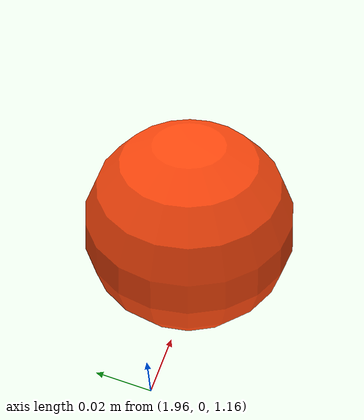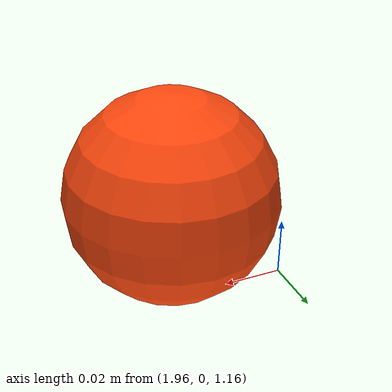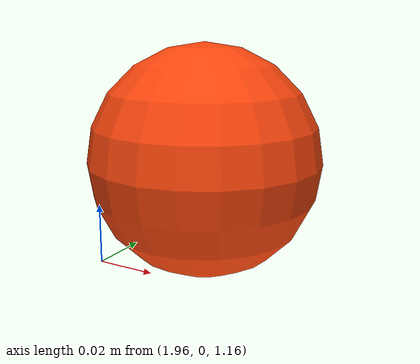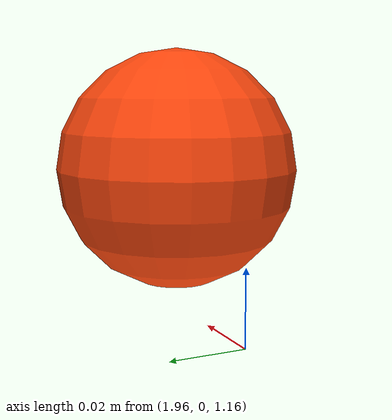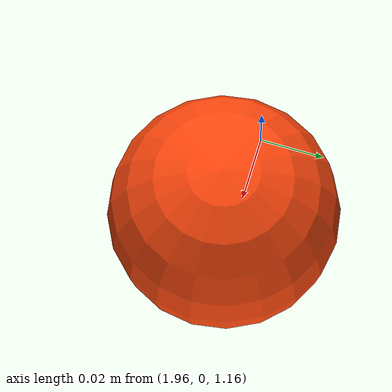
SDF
<?xml version="1.0"?>
<sdf version="1.6">
  <model name="catchball">
    <pose>2.0 0 1.2 0 0 0</pose>
    <link name="ball">
      <inertial>
        <mass>0.577</mass>
        <inertia>
          <ixx>0.00026097</ixx>
          <iyy>0.00026097</iyy>
          <izz>0.00026097</izz>
          <ixy>0</ixy>
          <ixz>0</ixz>
          <iyz>0</iyz>
        </inertia>
      </inertial>
      <collision name="collision">
        <geometry>
          <sphere>
            <radius>0.03365</radius>
          </sphere>
        </geometry>
        <surface>
          <contact>
            <ode>
              <kp>100000</kp>
              <kd>10</kd>
            </ode>
          </contact>
        </surface>
      </collision>
      <visual name="visual">
        <geometry>
          <sphere>
            <radius>0.03365</radius>
          </sphere>
        </geometry>
        <material>
          <ambient>1.0 0.28 0.05 1.0</ambient>
          <diffuse>1.0 0.28 0.05 1.0</diffuse>
        </material>
      </visual>
    </link>
  </model>
</sdf>
